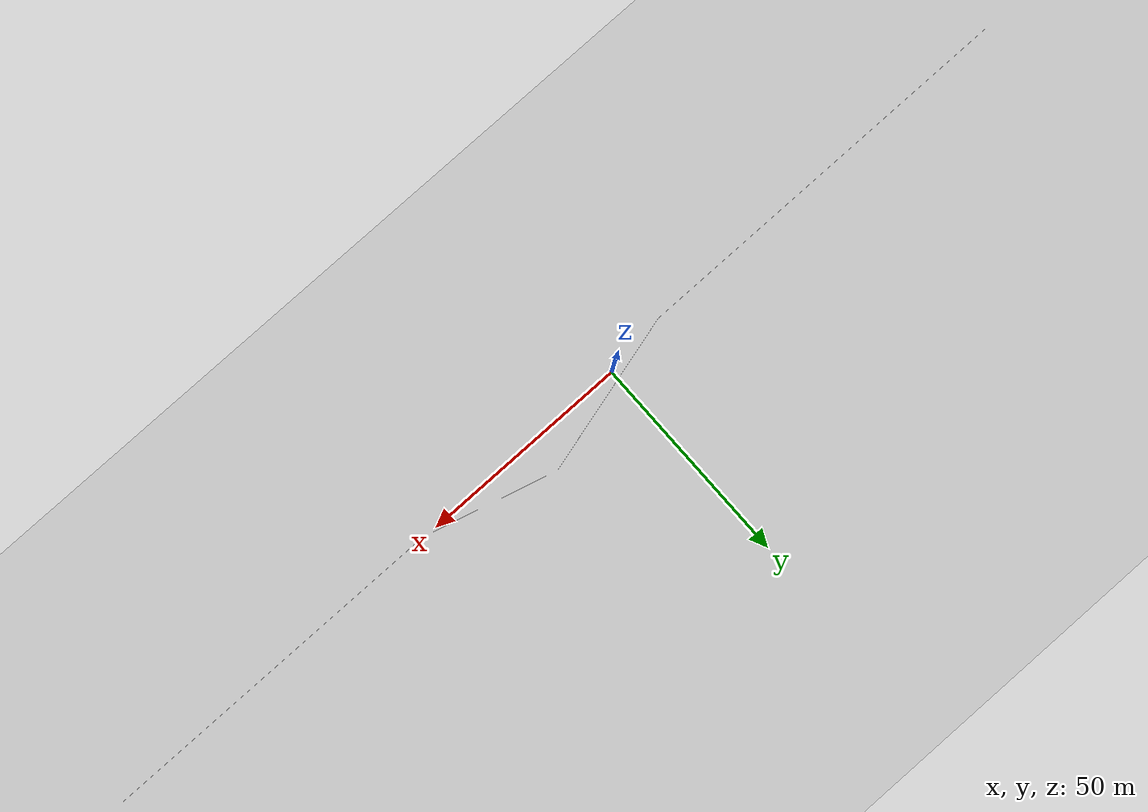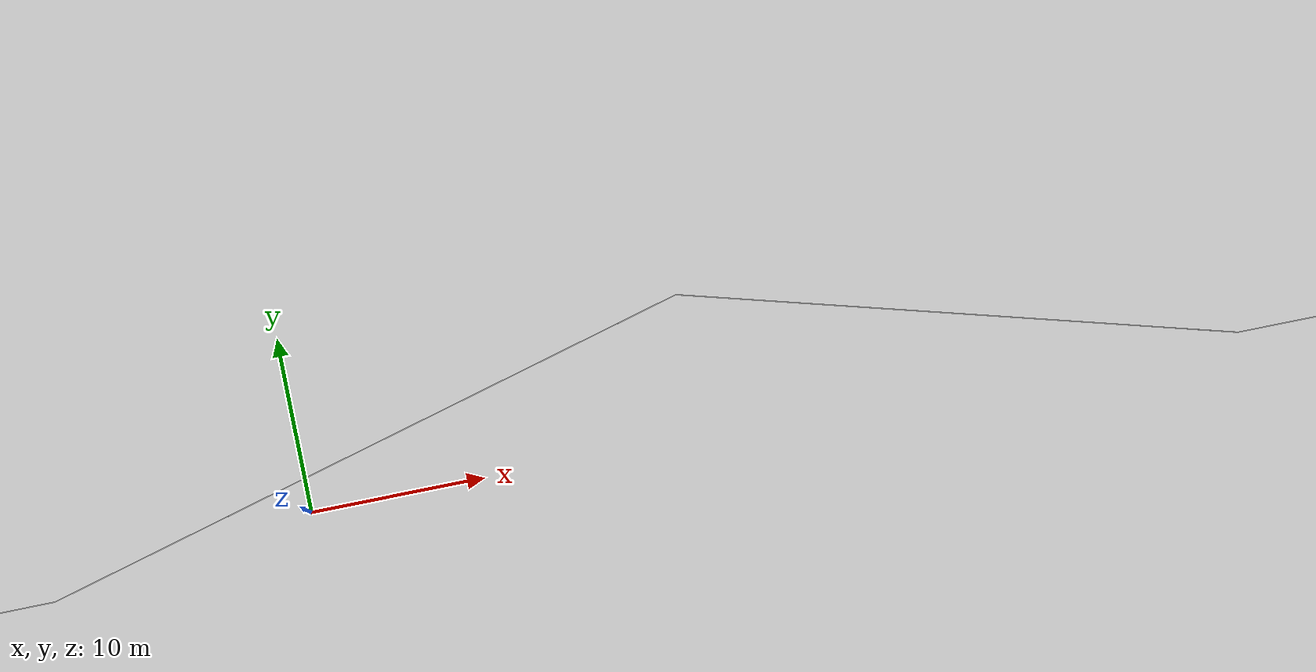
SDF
<sdf version="1.7">
 <world name="default">
  <light name="sun" type="directional">
   <pose>0 0 10 0 -0 0</pose>
   <diffuse>0.8 0.8 0.8 1</diffuse>
   <specular>0.2 0.2 0.2 1</specular>
   <attenuation>
    <range>1000</range>
    <constant>0.9</constant>
    <linear>0.01</linear>
    <quadratic>0.001</quadratic>
   </attenuation>
   <direction>-0.5 0.1 -0.9</direction>
   <spot><inner_angle>0</inner_angle><outer_angle>0</outer_angle><falloff>0</falloff></spot>
  </light>
  <model name="ground_plane">
   <static>1</static>
   <link name="link">
    <collision name="collision">
     <geometry><plane><normal>0 0 1</normal><size>100 100</size></plane></geometry>
     <surface><friction><ode><mu>100</mu><mu2>50</mu2></ode></friction></surface>
    </collision>
    <visual name="visual">
     <cast_shadows>0</cast_shadows>
     <geometry><plane><normal>0 0 1</normal><size>100 100</size></plane></geometry>
     <material>
      <script><uri>file://media/materials/scripts/gazebo.material</uri><name>Gazebo/Grey</name></script>
     </material>
    </visual>
   </link>
  </model>
  <gravity>0 0 -9.8</gravity>
  <magnetic_field>6e-06 2.3e-05 -4.2e-05</magnetic_field>
  <atmosphere type="adiabatic"/>
  <physics type="ode">
   <max_step_size>0.001</max_step_size>
   <real_time_factor>1</real_time_factor>
   <real_time_update_rate>1000</real_time_update_rate>
  </physics>
  <scene><ambient>0.4 0.4 0.4 1</ambient><background>0.7 0.7 0.7 1</background><shadows>1</shadows></scene>
  <audio><device>default</device></audio>
  <spherical_coordinates>
   <surface_model>EARTH_WGS84</surface_model>
   <latitude_deg>0</latitude_deg>
   <longitude_deg>0</longitude_deg>
   <elevation>0</elevation>
   <heading_deg>0</heading_deg>
  </spherical_coordinates>
  <model name="line_world1">
   <pose>13.7301 2.92985 0 0 -0 0</pose>
   <link name="Wall_2">
    <collision name="Wall_2_Collision">
     <geometry><box><size>95.8999 0.05 0.001</size></box></geometry>
     <pose>0 0 0.0005 0 -0 0</pose>
    </collision>
    <visual name="Wall_2_Visual">
     <pose>0 0 0.0005 0 -0 0</pose>
     <geometry><box><size>95.8999 0.05 0.001</size></box></geometry>
     <material>
      <script><uri>file://media/materials/scripts/gazebo.material</uri><name>Gazebo/Grey</name></script>
      <ambient>1 1 1 1</ambient>
     </material>
     <meta><layer>0</layer></meta>
    </visual>
    <pose>-76.8161 -5.06285 0 0 -0 0.001294</pose>
   </link>
   <link name="Wall_3">
    <collision name="Wall_3_Collision">
     <geometry><box><size>39.15 0.05 0.001</size></box></geometry>
     <pose>0 0 0.0005 0 -0 0</pose>
    </collision>
    <visual name="Wall_3_Visual">
     <pose>0 0 0.0005 0 -0 0</pose>
     <geometry><box><size>39.15 0.05 0.001</size></box></geometry>
     <material>
      <script><uri>file://media/materials/scripts/gazebo.material</uri><name>Gazebo/Grey</name></script>
      <ambient>1 1 1 1</ambient>
     </material>
     <meta><layer>0</layer></meta>
    </visual>
    <pose>-10.0071 0.059149 0 0 -0 0.261802</pose>
   </link>
   <link name="Wall_4">
    <collision name="Wall_4_Collision">
     <geometry><box><size>31.9319 0.05 0.001</size></box></geometry>
     <pose>0 0 0.0005 0 -0 0</pose>
    </collision>
    <visual name="Wall_4_Visual">
     <pose>0 0 0.0005 0 -0 0</pose>
     <geometry><box><size>31.9319 0.05 0.001</size></box></geometry>
     <material>
      <script><uri>file://media/materials/scripts/gazebo.material</uri><name>Gazebo/Grey</name></script>
      <ambient>1 1 1 1</ambient>
     </material>
     <meta><layer>0</layer></meta>
    </visual>
    <pose>24.2589 0.935649 0 0 -0 -0.265551</pose>
   </link>
   <link name="Wall_5">
    <collision name="Wall_5_Collision">
     <geometry><box><size>85.1504 0.05 0.001</size></box></geometry>
     <pose>0 0 0.0005 0 -0 0</pose>
    </collision>
    <visual name="Wall_5_Visual">
     <pose>0 0 0.0005 0 -0 0</pose>
     <geometry><box><size>85.1504 0.05 0.001</size></box></geometry>
     <material>
      <script><uri>file://media/materials/scripts/gazebo.material</uri><name>Gazebo/Grey</name></script>
      <ambient>1 1 1 1</ambient>
     </material>
     <meta><layer>0</layer></meta>
    </visual>
    <pose>82.1909 -3.24785 0 0 -0 0</pose>
   </link>
   <static>1</static>
  </model>
 </world>
</sdf>
